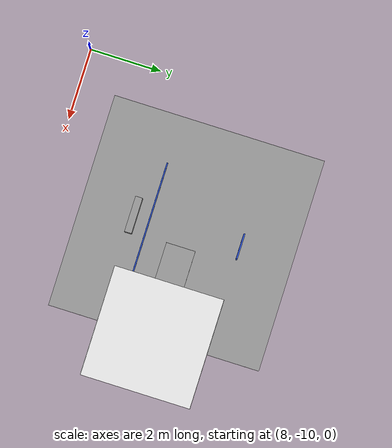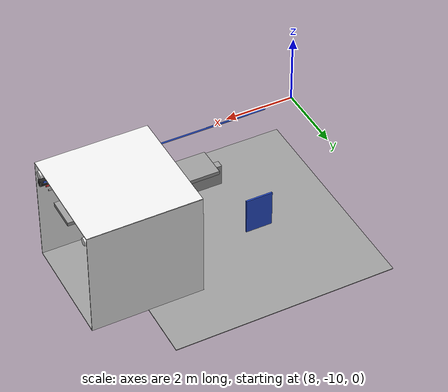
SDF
<sdf version="1.6">
 <world name="default">
  <model name="ceiling_1_4_-2_2_1">
   <pose>13.0 -6.0 2.55 0.0 0.0 -1.57</pose>
   <link name="link_1">
    <visual name="visual">
     <geometry><box><size>0.8 1 0.1</size></box></geometry>
     <material>
      <script><uri>file://media/materials/scripts/gazebo.material</uri><name>Gazebo/Grey</name></script>
     </material>
    </visual>
    <collision name="collision"><geometry><box><size>0.8 1 0.1</size></box></geometry></collision>
   </link>
   <static>1</static>
  </model>
  <model name="blue_pipe_right_4_-2_0_1">
   <static>1</static>
   <pose>12.0 -6.0 2.76 0.0 0.0 -1.57</pose>
   <link name="link_0">
    <visual name="visual">
     <pose>1 0 0 1.57 0 0</pose>
     <geometry><cylinder><radius>0.02</radius><length>3.0</length></cylinder></geometry>
     <material>
      <script><uri>file://media/materials/scripts/gazebo.material</uri><name>Gazebo/Blue</name></script>
     </material>
    </visual>
    <collision name="collision">
     <pose>1 0 0 1.57 0 0</pose>
     <geometry><cylinder><radius>0.02</radius><length>3.0</length></cylinder></geometry>
    </collision>
   </link>
  </model>
  <model name="wall_bottom_4_-2_0_1">
   <static>1</static>
   <pose>12.0 -6.0 0.0 0.0 0.0 -1.57</pose>
   <link name="link">
    <collision name="collision"><geometry><box><size>6.0 6.0 0.02</size></box></geometry></collision>
    <visual name="visual">
     <material>
      <script><name>Gazebo/Grey</name><uri>file://media/materials/scripts/gazebo.material</uri></script>
     </material>
     <geometry><box><size>6.0 6.0 0.02</size></box></geometry>
    </visual>
   </link>
  </model>
  <model name="panel_4_-2_0_1">
   <static>1</static>
   <pose>12.0 -7.5 0.66 0.0 0.0 -1.57</pose>
   <link name="link">
    <collision name="collision"><geometry><box><size>0.2 1 0.6</size></box></geometry></collision>
    <visual name="visual">
     <material>
      <script><name>Gazebo/Grey</name><uri>file://media/materials/scripts/gazebo.material</uri></script>
     </material>
     <geometry><box><size>0.2 1 0.6</size></box></geometry>
    </visual>
   </link>
  </model>
  <model name="panel_4_-2_1_1">
   <static>1</static>
   <pose>12.0 -4.5 1.95 0.0 0.0 -1.57</pose>
   <link name="link">
    <collision name="collision"><geometry><box><size>0.04 0.7 1</size></box></geometry></collision>
    <visual name="visual">
     <material>
      <script><name>Gazebo/Blue</name><uri>file://media/materials/scripts/gazebo.material</uri></script>
     </material>
     <geometry><box><size>0.04 0.7 1</size></box></geometry>
    </visual>
   </link>
  </model>
  <model name="wall_right_5_-2_0_4">
   <static>1</static>
   <pose>15.0 -7.5 1.5 0.0 0.0 0.0</pose>
   <link name="link">
    <collision name="collision"><geometry><box><size>3.0 0.02 3.0</size></box></geometry></collision>
    <visual name="visual">
     <material>
      <script><name>Gazebo/White</name><uri>file://media/materials/scripts/gazebo.material</uri></script>
     </material>
     <geometry><box><size>3.0 0.02 3.0</size></box></geometry>
    </visual>
   </link>
  </model>
  <model name="wall_left_5_-2_0_4">
   <static>1</static>
   <pose>15.0 -4.5 1.5 0.0 0.0 0.0</pose>
   <link name="link">
    <collision name="collision"><geometry><box><size>3.0 0.02 3.0</size></box></geometry></collision>
    <visual name="visual">
     <material>
      <script><name>Gazebo/White</name><uri>file://media/materials/scripts/gazebo.material</uri></script>
     </material>
     <geometry><box><size>3.0 0.02 3.0</size></box></geometry>
    </visual>
   </link>
  </model>
  <model name="wall_top_5_-2_0_4">
   <static>1</static>
   <pose>15.0 -6.0 3.0 1.57 0.0 -1.57</pose>
   <link name="link">
    <collision name="collision"><geometry><box><size>3.0 0.02 3.0</size></box></geometry></collision>
    <visual name="visual">
     <material>
      <script><name>Gazebo/White</name><uri>file://media/materials/scripts/gazebo.material</uri></script>
     </material>
     <geometry><box><size>3.0 0.02 3.0</size></box></geometry>
    </visual>
   </link>
  </model>
  <model name="ceiling_1_5_-2_0_4">
   <pose>15.0 -6.0 2.55 0.0 0.0 -1.57</pose>
   <link name="link_1">
    <visual name="visual">
     <geometry><box><size>0.8 1 0.1</size></box></geometry>
     <material>
      <script><uri>file://media/materials/scripts/gazebo.material</uri><name>Gazebo/Grey</name></script>
     </material>
    </visual>
    <collision name="collision"><geometry><box><size>0.8 1 0.1</size></box></geometry></collision>
   </link>
   <static>1</static>
  </model>
  <model name="ceiling_1_5_-2_1_4">
   <pose>14.0 -6.0 2.55 0.0 0.0 -1.57</pose>
   <link name="link_1">
    <visual name="visual">
     <geometry><box><size>0.8 1 0.1</size></box></geometry>
     <material>
      <script><uri>file://media/materials/scripts/gazebo.material</uri><name>Gazebo/Grey</name></script>
     </material>
    </visual>
    <collision name="collision"><geometry><box><size>0.8 1 0.1</size></box></geometry></collision>
   </link>
   <static>1</static>
  </model>
  <model name="ceiling_1_5_-2_2_4">
   <pose>16.0 -6.0 2.55 0.0 0.0 -1.57</pose>
   <link name="link_1">
    <visual name="visual">
     <geometry><box><size>0.8 1 0.1</size></box></geometry>
     <material>
      <script><uri>file://media/materials/scripts/gazebo.material</uri><name>Gazebo/Grey</name></script>
     </material>
    </visual>
    <collision name="collision"><geometry><box><size>0.8 1 0.1</size></box></geometry></collision>
   </link>
   <static>1</static>
  </model>
  <model name="white_pipe_left_5_-2_0_4">
   <static>1</static>
   <pose>15.0 -6.0 2.76 0.0 0.0 -1.57</pose>
   <link name="link_0">
    <visual name="visual">
     <pose>-1.3 0 0 1.57 0 0</pose>
     <geometry><cylinder><radius>0.1</radius><length>3.0</length></cylinder></geometry>
     <material>
      <script><uri>file://media/materials/scripts/gazebo.material</uri><name>Gazebo/White</name></script>
     </material>
    </visual>
    <collision name="collision">
     <pose>-1.3 0 0 1.57 0 0</pose>
     <geometry><cylinder><radius>0.1</radius><length>3.0</length></cylinder></geometry>
    </collision>
   </link>
  </model>
  <model name="white_pipe_right_5_-2_0_4">
   <static>1</static>
   <pose>15.0 -6.0 2.76 0.0 0.0 -1.57</pose>
   <link name="link_0">
    <visual name="visual">
     <pose>1.3 0 0 1.57 0 0</pose>
     <geometry><cylinder><radius>0.1</radius><length>3.0</length></cylinder></geometry>
     <material>
      <script><uri>file://media/materials/scripts/gazebo.material</uri><name>Gazebo/White</name></script>
     </material>
    </visual>
    <collision name="collision">
     <pose>1.3 0 0 1.57 0 0</pose>
     <geometry><cylinder><radius>0.1</radius><length>3.0</length></cylinder></geometry>
    </collision>
   </link>
  </model>
  <model name="black_pipe_right_5_-2_0_4">
   <static>1</static>
   <pose>15.0 -6.0 2.76 0.0 0.0 -1.57</pose>
   <link name="link_0">
    <visual name="visual">
     <pose>1.3 0 -0.25 1.57 0 0</pose>
     <geometry><cylinder><radius>0.1</radius><length>3.0</length></cylinder></geometry>
     <material>
      <script><uri>file://media/materials/scripts/gazebo.material</uri><name>Gazebo/Black</name></script>
     </material>
    </visual>
    <collision name="collision">
     <pose>1.3 0 -0.25 1.57 0 0</pose>
     <geometry><cylinder><radius>0.1</radius><length>3.0</length></cylinder></geometry>
    </collision>
   </link>
  </model>
  <model name="grey_pipe_right_5_-2_0_4">
   <static>1</static>
   <pose>15.0 -6.0 2.76 0.0 0.0 -1.57</pose>
   <link name="link_0">
    <visual name="visual">
     <pose>0.7 0 0 1.57 0 0</pose>
     <geometry><cylinder><radius>0.02</radius><length>3.0</length></cylinder></geometry>
     <material>
      <script><uri>file://media/materials/scripts/gazebo.material</uri><name>Gazebo/Grey</name></script>
     </material>
    </visual>
    <collision name="collision">
     <pose>0.7 0 0 1.57 0 0</pose>
     <geometry><cylinder><radius>0.02</radius><length>3.0</length></cylinder></geometry>
    </collision>
   </link>
  </model>
  <model name="red_pipe_right_5_-2_0_4">
   <static>1</static>
   <pose>15.0 -6.0 2.76 0.0 0.0 -1.57</pose>
   <link name="link_0">
    <visual name="visual">
     <pose>0.85 0 0 1.57 0 0</pose>
     <geometry><cylinder><radius>0.02</radius><length>3.0</length></cylinder></geometry>
     <material>
      <script><uri>file://media/materials/scripts/gazebo.material</uri><name>Gazebo/Red</name></script>
     </material>
    </visual>
    <collision name="collision">
     <pose>0.85 0 0 1.57 0 0</pose>
     <geometry><cylinder><radius>0.02</radius><length>3.0</length></cylinder></geometry>
    </collision>
   </link>
  </model>
  <model name="blue_pipe_right_5_-2_0_4">
   <static>1</static>
   <pose>15.0 -6.0 2.76 0.0 0.0 -1.57</pose>
   <link name="link_0">
    <visual name="visual">
     <pose>1 0 0 1.57 0 0</pose>
     <geometry><cylinder><radius>0.02</radius><length>3.0</length></cylinder></geometry>
     <material>
      <script><uri>file://media/materials/scripts/gazebo.material</uri><name>Gazebo/Blue</name></script>
     </material>
    </visual>
    <collision name="collision">
     <pose>1 0 0 1.57 0 0</pose>
     <geometry><cylinder><radius>0.02</radius><length>3.0</length></cylinder></geometry>
    </collision>
   </link>
  </model>
  <model name="wall_bottom_5_-2_0_4">
   <static>1</static>
   <pose>15.0 -6.0 0.0 0.0 0.0 -1.57</pose>
   <link name="link">
    <collision name="collision"><geometry><box><size>3.0 3.0 0.02</size></box></geometry></collision>
    <visual name="visual">
     <material>
      <script><name>Gazebo/Grey</name><uri>file://media/materials/scripts/gazebo.material</uri></script>
     </material>
     <geometry><box><size>3.0 3.0 0.02</size></box></geometry>
    </visual>
   </link>
  </model>
 </world>
</sdf>
